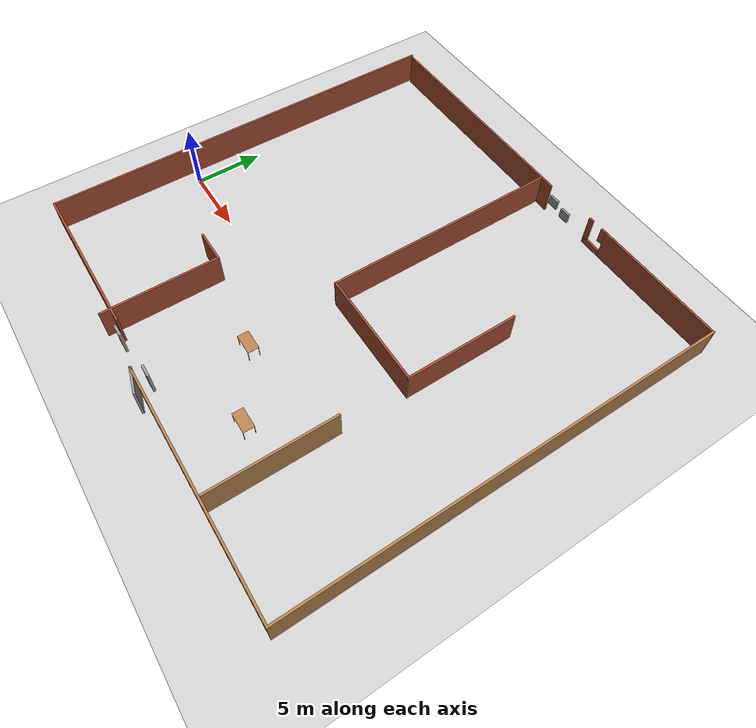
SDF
<sdf version="1.6">
 <world name="default">
  <model name="ground_plane">
   <static>1</static>
   <link name="link">
    <collision name="collision">
     <geometry><plane><normal>0 0 1</normal><size>100 100</size></plane></geometry>
     <surface>
      <contact><collide_bitmask>65535</collide_bitmask></contact>
      <friction><ode><mu>100</mu><mu2>50</mu2></ode></friction>
     </surface>
    </collision>
    <visual name="visual">
     <cast_shadows>0</cast_shadows>
     <geometry><plane><normal>0 0 1</normal><size>100 100</size></plane></geometry>
     <material>
      <script><uri>file://media/materials/scripts/gazebo.material</uri><name>Gazebo/Grey</name></script>
     </material>
    </visual>
   </link>
  </model>
  <model name="model_0">
   <pose>15.172 4.56993 0 0 -0 0</pose>
   <link name="Door_0">
    <collision name="Door_0_Collision">
     <geometry><box><size>0.9 0.17 2</size></box></geometry>
     <pose>0 0 1 0 -0 0</pose>
    </collision>
    <visual name="Door_0_Visual">
     <pose>0 0 1 0 -0 0</pose>
     <geometry><box><size>0.9 0.17 2</size></box></geometry>
     <material>
      <script><uri>file://media/materials/scripts/gazebo.material</uri><name>Gazebo/Grey</name></script>
     </material>
    </visual>
    <pose>-0.625278 -14.8472 0 0 -0 0</pose>
   </link>
   <link name="Door_1">
    <collision name="Door_1_Collision">
     <geometry><box><size>0.9 0.17 2</size></box></geometry>
     <pose>0 0 1 0 -0 0</pose>
    </collision>
    <visual name="Door_1_Visual">
     <pose>0 0 1 0 -0 0</pose>
     <geometry><box><size>0.9 0.17 2</size></box></geometry>
     <material>
      <script><uri>file://media/materials/scripts/gazebo.material</uri><name>Gazebo/Grey</name></script>
     </material>
    </visual>
    <pose>-4.28411 -15.1701 0 0 -0 0</pose>
   </link>
   <link name="Wall_10">
    <collision name="Wall_10_Collision">
     <geometry><box><size>31.75 0.15 2.5</size></box></geometry>
     <pose>0 0 1.25 0 -0 0</pose>
    </collision>
    <visual name="Wall_10_Visual">
     <pose>0 0 1.25 0 -0 0</pose>
     <geometry><box><size>31.75 0.15 2.5</size></box></geometry>
     <material>
      <script><uri>file://media/materials/scripts/gazebo.material</uri><name>Gazebo/Wood</name></script>
      <ambient>1 1 1 1</ambient>
     </material>
     <meta><layer>0</layer></meta>
    </visual>
    <pose>16.3367 0.247834 0 0 -0 1.5708</pose>
   </link>
   <link name="Wall_11">
    <pose>10.7867 16.0478 0 0 -0 3.14159</pose>
    <visual name="Wall_11_Visual_0">
     <pose>-0.80391 0 1.25 0 -0 0</pose>
     <geometry><box><size>9.64218 0.15 2.5</size></box></geometry>
     <material>
      <script><uri>file://media/materials/scripts/gazebo.material</uri><name>Gazebo/Bricks</name></script>
      <ambient>1 1 1 1</ambient>
     </material>
     <meta><layer>0</layer></meta>
    </visual>
    <collision name="Wall_11_Collision_0">
     <geometry><box><size>9.64218 0.15 2.5</size></box></geometry>
     <pose>-0.80391 0 1.25 0 -0 0</pose>
    </collision>
    <visual name="Wall_11_Visual_1">
     <pose>4.82109 0 0.25 0 -0 0</pose>
     <geometry><box><size>1.60782 0.15 0.5</size></box></geometry>
     <material>
      <script><uri>file://media/materials/scripts/gazebo.material</uri><name>Gazebo/Bricks</name></script>
      <ambient>1 1 1 1</ambient>
     </material>
     <meta><layer>0</layer></meta>
    </visual>
    <collision name="Wall_11_Collision_1">
     <geometry><box><size>1.60782 0.15 0.5</size></box></geometry>
     <pose>4.82109 0 0.25 0 -0 0</pose>
    </collision>
    <visual name="Wall_11_Visual_2">
     <pose>5.43631 0 1.5 0 -0 0</pose>
     <geometry><box><size>0.377369 0.15 2</size></box></geometry>
     <material>
      <script><uri>file://media/materials/scripts/gazebo.material</uri><name>Gazebo/Bricks</name></script>
      <ambient>1 1 1 1</ambient>
     </material>
     <meta><layer>0</layer></meta>
    </visual>
    <collision name="Wall_11_Collision_2">
     <geometry><box><size>0.377369 0.15 2</size></box></geometry>
     <pose>5.43631 0 1.5 0 -0 0</pose>
    </collision>
    <visual name="Wall_11_Visual_3">
     <pose>4.2324 0 1.9 0 -0 0</pose>
     <geometry><box><size>0.43045 0.15 1.2</size></box></geometry>
     <material>
      <script><uri>file://media/materials/scripts/gazebo.material</uri><name>Gazebo/Bricks</name></script>
      <ambient>1 1 1 1</ambient>
     </material>
     <meta><layer>0</layer></meta>
    </visual>
    <collision name="Wall_11_Collision_3">
     <geometry><box><size>0.43045 0.15 1.2</size></box></geometry>
     <pose>4.2324 0 1.9 0 -0 0</pose>
    </collision>
   </link>
   <link name="Wall_13">
    <collision name="Wall_13_Collision">
     <geometry><box><size>17.5 0.15 2.5</size></box></geometry>
     <pose>0 0 1.25 0 -0 0</pose>
    </collision>
    <visual name="Wall_13_Visual">
     <pose>0 0 1.25 0 -0 0</pose>
     <geometry><box><size>17.5 0.15 2.5</size></box></geometry>
     <material>
      <script><uri>file://media/materials/scripts/gazebo.material</uri><name>Gazebo/Bricks</name></script>
      <ambient>1 1 1 1</ambient>
     </material>
     <meta><layer>0</layer></meta>
    </visual>
    <pose>-7.33889 15.8224 0 0 -0 0</pose>
   </link>
   <link name="Wall_15">
    <collision name="Wall_15_Collision">
     <geometry><box><size>17.75 0.15 2.5</size></box></geometry>
     <pose>0 0 1.25 0 -0 0</pose>
    </collision>
    <visual name="Wall_15_Visual">
     <pose>0 0 1.25 0 -0 0</pose>
     <geometry><box><size>17.75 0.15 2.5</size></box></geometry>
     <material>
      <script><uri>file://media/materials/scripts/gazebo.material</uri><name>Gazebo/Bricks</name></script>
      <ambient>1 1 1 1</ambient>
     </material>
     <meta><layer>0</layer></meta>
    </visual>
    <pose>0.343236 7.02236 0 0 0 -1.5708</pose>
   </link>
   <link name="Wall_16">
    <collision name="Wall_16_Collision">
     <geometry><box><size>8.5 0.15 2.5</size></box></geometry>
     <pose>0 0 1.25 0 -0 0</pose>
    </collision>
    <visual name="Wall_16_Visual">
     <pose>0 0 1.25 0 -0 0</pose>
     <geometry><box><size>8.5 0.15 2.5</size></box></geometry>
     <material>
      <script><uri>file://media/materials/scripts/gazebo.material</uri><name>Gazebo/Bricks</name></script>
      <ambient>1 1 1 1</ambient>
     </material>
     <meta><layer>0</layer></meta>
    </visual>
    <pose>4.51824 -1.77764 0 0 -0 0</pose>
   </link>
   <link name="Wall_17">
    <collision name="Wall_17_Collision">
     <geometry><box><size>0.15 0.15 2.5</size></box></geometry>
     <pose>0 0 1.25 0 -0 0</pose>
    </collision>
    <visual name="Wall_17_Visual">
     <pose>0 0 1.25 0 -0 0</pose>
     <geometry><box><size>0.15 0.15 2.5</size></box></geometry>
     <material>
      <script><uri>file://media/materials/scripts/gazebo.material</uri><name>Gazebo/Grey</name></script>
      <ambient>1 1 1 1</ambient>
     </material>
     <meta><layer>0</layer></meta>
    </visual>
    <pose>8.69324 -1.77764 0 0 -0 0</pose>
   </link>
   <link name="Wall_18">
    <collision name="Wall_18_Collision">
     <geometry><box><size>8.25 0.15 2.5</size></box></geometry>
     <pose>0 0 1.25 0 -0 0</pose>
    </collision>
    <visual name="Wall_18_Visual">
     <pose>0 0 1.25 0 -0 0</pose>
     <geometry><box><size>8.25 0.15 2.5</size></box></geometry>
     <material>
      <script><uri>file://media/materials/scripts/gazebo.material</uri><name>Gazebo/Bricks</name></script>
      <ambient>1 1 1 1</ambient>
     </material>
     <meta><layer>0</layer></meta>
    </visual>
    <pose>8.69324 2.27236 0 0 -0 1.5708</pose>
   </link>
   <link name="Wall_20">
    <collision name="Wall_20_Collision">
     <geometry><box><size>2.5 0.15 2.5</size></box></geometry>
     <pose>0 0 1.25 0 -0 0</pose>
    </collision>
    <visual name="Wall_20_Visual">
     <pose>0 0 1.25 0 -0 0</pose>
     <geometry><box><size>2.5 0.15 2.5</size></box></geometry>
     <material>
      <script><uri>file://media/materials/scripts/gazebo.material</uri><name>Gazebo/Bricks</name></script>
      <ambient>1 1 1 1</ambient>
     </material>
     <meta><layer>0</layer></meta>
    </visual>
    <pose>-6.87555 -7.31436 0 0 -0 0</pose>
   </link>
   <link name="Wall_21">
    <collision name="Wall_21_Collision">
     <geometry><box><size>8.5 0.15 2.5</size></box></geometry>
     <pose>0 0 1.25 0 -0 0</pose>
    </collision>
    <visual name="Wall_21_Visual">
     <pose>0 0 1.25 0 -0 0</pose>
     <geometry><box><size>8.5 0.15 2.5</size></box></geometry>
     <material>
      <script><uri>file://media/materials/scripts/gazebo.material</uri><name>Gazebo/Bricks</name></script>
      <ambient>1 1 1 1</ambient>
     </material>
     <meta><layer>0</layer></meta>
    </visual>
    <pose>-5.70055 -11.4894 0 0 0 -1.5708</pose>
   </link>
   <link name="Wall_23">
    <collision name="Wall_23_Collision">
     <geometry><box><size>9 0.15 2.5</size></box></geometry>
     <pose>0 0 1.25 0 -0 0</pose>
    </collision>
    <visual name="Wall_23_Visual">
     <pose>0 0 1.25 0 -0 0</pose>
     <geometry><box><size>9 0.15 2.5</size></box></geometry>
     <material>
      <script><uri>file://media/materials/scripts/gazebo.material</uri><name>Gazebo/Wood</name></script>
      <ambient>1 1 1 1</ambient>
     </material>
     <meta><layer>0</layer></meta>
    </visual>
    <pose>8.5218 -10.9861 0 0 0 -1.5708</pose>
   </link>
   <link name="Wall_3">
    <collision name="Wall_3_Collision">
     <geometry><box><size>31 0.15 2.5</size></box></geometry>
     <pose>0 0 1.25 0 -0 0</pose>
    </collision>
    <visual name="Wall_3_Visual">
     <pose>0 0 1.25 0 -0 0</pose>
     <geometry><box><size>31 0.15 2.5</size></box></geometry>
     <material>
      <script><uri>file://media/materials/scripts/gazebo.material</uri><name>Gazebo/Bricks</name></script>
      <ambient>1 1 1 1</ambient>
     </material>
     <meta><layer>0</layer></meta>
    </visual>
    <pose>-16.3367 0.504973 0 0 0 -1.5708</pose>
   </link>
   <link name="Wall_4">
    <collision name="Wall_4_Collision">
     <geometry><box><size>11.75 0.15 2.5</size></box></geometry>
     <pose>0 0 1.25 0 -0 0</pose>
    </collision>
    <visual name="Wall_4_Visual">
     <pose>0 0 1.25 0 -0 0</pose>
     <geometry><box><size>11.75 0.15 2.5</size></box></geometry>
     <material>
      <script><uri>file://media/materials/scripts/gazebo.material</uri><name>Gazebo/Bricks</name></script>
      <ambient>1 1 1 1</ambient>
     </material>
     <meta><layer>0</layer></meta>
    </visual>
    <pose>-10.5367 -14.92 0 0 -0 0</pose>
   </link>
   <link name="Wall_6">
    <collision name="Wall_6_Collision">
     <geometry><box><size>2 0.15 2.5</size></box></geometry>
     <pose>0 0 1.25 0 -0 0</pose>
    </collision>
    <visual name="Wall_6_Visual">
     <pose>0 0 1.25 0 -0 0</pose>
     <geometry><box><size>2 0.15 2.5</size></box></geometry>
     <material>
      <script><uri>file://media/materials/scripts/gazebo.material</uri><name>Gazebo/Grey</name></script>
      <ambient>1 1 1 1</ambient>
     </material>
     <meta><layer>0</layer></meta>
    </visual>
    <pose>-0.119795 -15.7916 0 0 -0 2.87979</pose>
   </link>
   <link name="Wall_9">
    <collision name="Wall_9_Collision">
     <geometry><box><size>17.5 0.15 2.5</size></box></geometry>
     <pose>0 0 1.25 0 -0 0</pose>
    </collision>
    <visual name="Wall_9_Visual">
     <pose>0 0 1.25 0 -0 0</pose>
     <geometry><box><size>17.5 0.15 2.5</size></box></geometry>
     <material>
      <script><uri>file://media/materials/scripts/gazebo.material</uri><name>Gazebo/Wood</name></script>
      <ambient>1 1 1 1</ambient>
     </material>
     <meta><layer>0</layer></meta>
    </visual>
    <pose>7.66172 -15.5522 0 0 -0 0</pose>
   </link>
   <link name="Window_3">
    <collision name="Window_3_Collision">
     <geometry><box><size>0.8 0.17 0.8</size></box></geometry>
     <pose>0 0 0.4 0 -0 0</pose>
    </collision>
    <visual name="Window_3_Visual">
     <pose>0 0 0.4 0 -0 0</pose>
     <geometry><box><size>0.8 0.17 0.8</size></box></geometry>
     <material>
      <script><uri>file://media/materials/scripts/gazebo.material</uri><name>Gazebo/Grey</name></script>
     </material>
    </visual>
    <pose>1.7422 16.1452 0.5 0 -0 0</pose>
   </link>
   <link name="Window_4">
    <collision name="Window_4_Collision">
     <geometry><box><size>0.8 0.17 0.8</size></box></geometry>
     <pose>0 0 0.4 0 -0 0</pose>
    </collision>
    <visual name="Window_4_Visual">
     <pose>0 0 0.4 0 -0 0</pose>
     <geometry><box><size>0.8 0.17 0.8</size></box></geometry>
     <material>
      <script><uri>file://media/materials/scripts/gazebo.material</uri><name>Gazebo/Grey</name></script>
     </material>
    </visual>
    <pose>3.14116 15.93 0.5 0 -0 0</pose>
   </link>
   <static>1</static>
  </model>
  <model name="table_clone_clone">
   <static>1</static>
   <link name="link">
    <collision name="surface">
     <pose>0 0 1 0 -0 0</pose>
     <geometry><box><size>1.5 0.8 0.03</size></box></geometry>
     <surface><friction><ode><mu>0.6</mu><mu2>0.6</mu2></ode></friction></surface>
    </collision>
    <visual name="visual1">
     <pose>0 0 1 0 -0 0</pose>
     <geometry><box><size>1.5 0.8 0.03</size></box></geometry>
     <material>
      <script><uri>file://media/materials/scripts/gazebo.material</uri><name>Gazebo/Wood</name></script>
     </material>
    </visual>
    <collision name="front_left_leg">
     <pose>0.68 0.38 0.5 0 -0 0</pose>
     <geometry><cylinder><radius>0.02</radius><length>1</length></cylinder></geometry>
    </collision>
    <visual name="front_left_leg">
     <pose>0.68 0.38 0.5 0 -0 0</pose>
     <geometry><cylinder><radius>0.02</radius><length>1</length></cylinder></geometry>
     <material>
      <script><uri>file://media/materials/scripts/gazebo.material</uri><name>Gazebo/Grey</name></script>
     </material>
    </visual>
    <collision name="front_right_leg">
     <pose>0.68 -0.38 0.5 0 -0 0</pose>
     <geometry><cylinder><radius>0.02</radius><length>1</length></cylinder></geometry>
    </collision>
    <visual name="front_right_leg">
     <pose>0.68 -0.38 0.5 0 -0 0</pose>
     <geometry><cylinder><radius>0.02</radius><length>1</length></cylinder></geometry>
     <material>
      <script><uri>file://media/materials/scripts/gazebo.material</uri><name>Gazebo/Grey</name></script>
     </material>
    </visual>
    <collision name="back_right_leg">
     <pose>-0.68 -0.38 0.5 0 -0 0</pose>
     <geometry><cylinder><radius>0.02</radius><length>1</length></cylinder></geometry>
    </collision>
    <visual name="back_right_leg">
     <pose>-0.68 -0.38 0.5 0 -0 0</pose>
     <geometry><cylinder><radius>0.02</radius><length>1</length></cylinder></geometry>
     <material>
      <script><uri>file://media/materials/scripts/gazebo.material</uri><name>Gazebo/Grey</name></script>
     </material>
    </visual>
    <collision name="back_left_leg">
     <pose>-0.68 0.38 0.5 0 -0 0</pose>
     <geometry><cylinder><radius>0.02</radius><length>1</length></cylinder></geometry>
    </collision>
    <visual name="back_left_leg">
     <pose>-0.68 0.38 0.5 0 -0 0</pose>
     <geometry><cylinder><radius>0.02</radius><length>1</length></cylinder></geometry>
     <material>
      <script><uri>file://media/materials/scripts/gazebo.material</uri><name>Gazebo/Grey</name></script>
     </material>
    </visual>
   </link>
   <pose>20.2441 -6.65973 0 0 -0 0</pose>
  </model>
  <model name="table_clone_clone_0">
   <static>1</static>
   <link name="link">
    <collision name="surface">
     <pose>0 0 1 0 -0 0</pose>
     <geometry><box><size>1.5 0.8 0.03</size></box></geometry>
     <surface><friction><ode><mu>0.6</mu><mu2>0.6</mu2></ode></friction></surface>
    </collision>
    <visual name="visual1">
     <pose>0 0 1 0 -0 0</pose>
     <geometry><box><size>1.5 0.8 0.03</size></box></geometry>
     <material>
      <script><uri>file://media/materials/scripts/gazebo.material</uri><name>Gazebo/Wood</name></script>
     </material>
    </visual>
    <collision name="front_left_leg">
     <pose>0.68 0.38 0.5 0 -0 0</pose>
     <geometry><cylinder><radius>0.02</radius><length>1</length></cylinder></geometry>
    </collision>
    <visual name="front_left_leg">
     <pose>0.68 0.38 0.5 0 -0 0</pose>
     <geometry><cylinder><radius>0.02</radius><length>1</length></cylinder></geometry>
     <material>
      <script><uri>file://media/materials/scripts/gazebo.material</uri><name>Gazebo/Grey</name></script>
     </material>
    </visual>
    <collision name="front_right_leg">
     <pose>0.68 -0.38 0.5 0 -0 0</pose>
     <geometry><cylinder><radius>0.02</radius><length>1</length></cylinder></geometry>
    </collision>
    <visual name="front_right_leg">
     <pose>0.68 -0.38 0.5 0 -0 0</pose>
     <geometry><cylinder><radius>0.02</radius><length>1</length></cylinder></geometry>
     <material>
      <script><uri>file://media/materials/scripts/gazebo.material</uri><name>Gazebo/Grey</name></script>
     </material>
    </visual>
    <collision name="back_right_leg">
     <pose>-0.68 -0.38 0.5 0 -0 0</pose>
     <geometry><cylinder><radius>0.02</radius><length>1</length></cylinder></geometry>
    </collision>
    <visual name="back_right_leg">
     <pose>-0.68 -0.38 0.5 0 -0 0</pose>
     <geometry><cylinder><radius>0.02</radius><length>1</length></cylinder></geometry>
     <material>
      <script><uri>file://media/materials/scripts/gazebo.material</uri><name>Gazebo/Grey</name></script>
     </material>
    </visual>
    <collision name="back_left_leg">
     <pose>-0.68 0.38 0.5 0 -0 0</pose>
     <geometry><cylinder><radius>0.02</radius><length>1</length></cylinder></geometry>
    </collision>
    <visual name="back_left_leg">
     <pose>-0.68 0.38 0.5 0 -0 0</pose>
     <geometry><cylinder><radius>0.02</radius><length>1</length></cylinder></geometry>
     <material>
      <script><uri>file://media/materials/scripts/gazebo.material</uri><name>Gazebo/Grey</name></script>
     </material>
    </visual>
   </link>
   <pose>15.5232 -3.8592 0 0 -0 0</pose>
  </model>
 </world>
</sdf>
